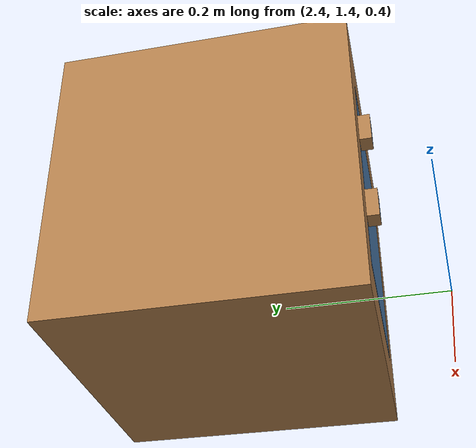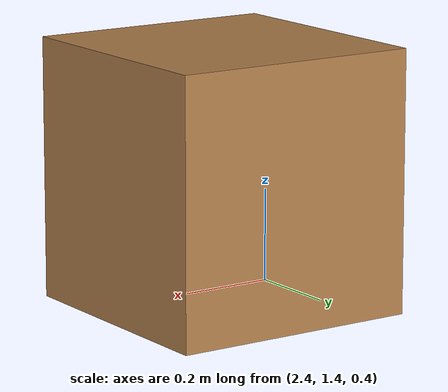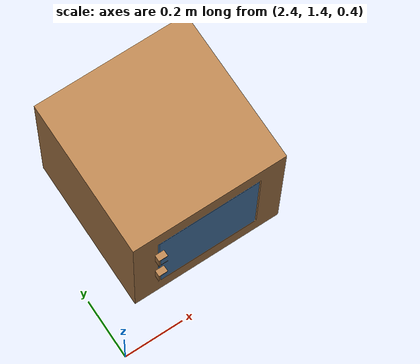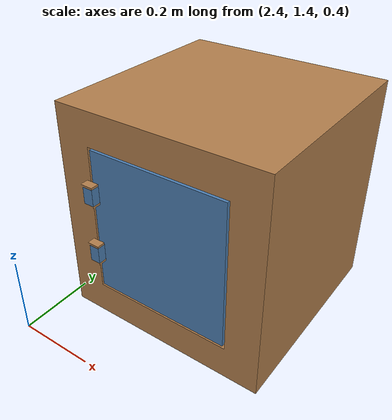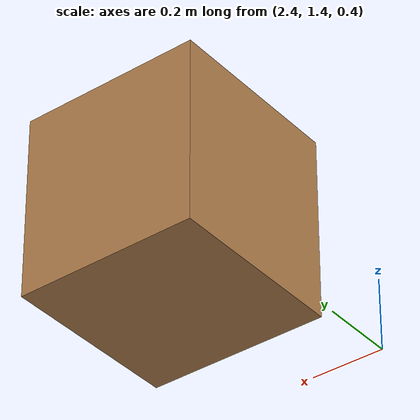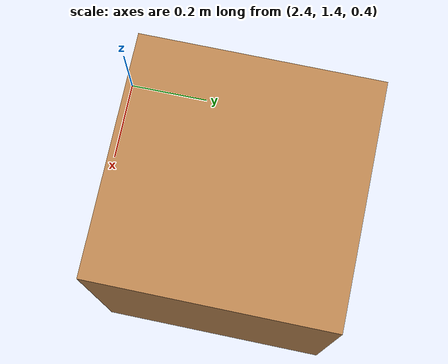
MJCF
<mujoco model="test">
  <compiler angle="radian" meshdir="."/>
  <option gravity="0 0 0"/>
  <asset>
    <mesh name="Box" file="Box.stl"/>
    <mesh name="Door" file="Door.stl"/>
    <material name="mat_box" rgba="0.7 0.5 0.3 1"/>
    <material name="mat_door" rgba="0.3 0.5 0.7 1"/>
  </asset>
  <worldbody>
    <body name="robot_base" pos="0 0 0">
      <body name="link1" pos="0 0 0.1575">
        <joint name="joint1" axis="0 0 1" range="-2.96706 2.96706" damping="10.0"/>
        <body name="link2" pos="0 0 0.2025">
          <joint name="joint2" axis="0 0 1" range="-2.0944 2.0944" damping="10.0"/>
          <body name="link3" pos="0 0 0.2045">
            <joint name="joint3" axis="0 0 1" range="-2.96706 2.96706" damping="10.0"/>
            <body name="link4" pos="0 0 0.2155">
              <joint name="joint4" axis="0 0 1" range="-2.0944 2.0944" damping="10.0"/>
              <body name="link5" pos="0 0 0.1845">
                <joint name="joint5" axis="0 0 1" range="-2.96706 2.96706" damping="10.0"/>
                <body name="link6" pos="0 0 0.2155">
                  <joint name="joint6" axis="0 0 1" range="-2.0944 2.0944" damping="10.0"/>
                  <body name="link7" pos="0 0 0.081">
                    <joint name="joint7" axis="0 0 1" range="-3.05433 3.05433" damping="10.0"/>
                  </body>
                </body>
              </body>
            </body>
          </body>
        </body>
      </body>
    </body>
    <body name="box_door_assembly" pos="2.5 1.5 0.5">
      <freejoint name="assembly_freejoint"/>
      <geom name="box_geom" type="mesh" mesh="Box" material="mat_box"/>
      <body name="Hinged_Door">
        <joint name="door_hinge" type="hinge" pos="0.075 -0.02 0.165" axis="0 0 1" range="0 1.5708"/>
        <geom name="door_geom" type="mesh" mesh="Door" material="mat_door"/>
      </body>
    </body>
  </worldbody>
</mujoco>
